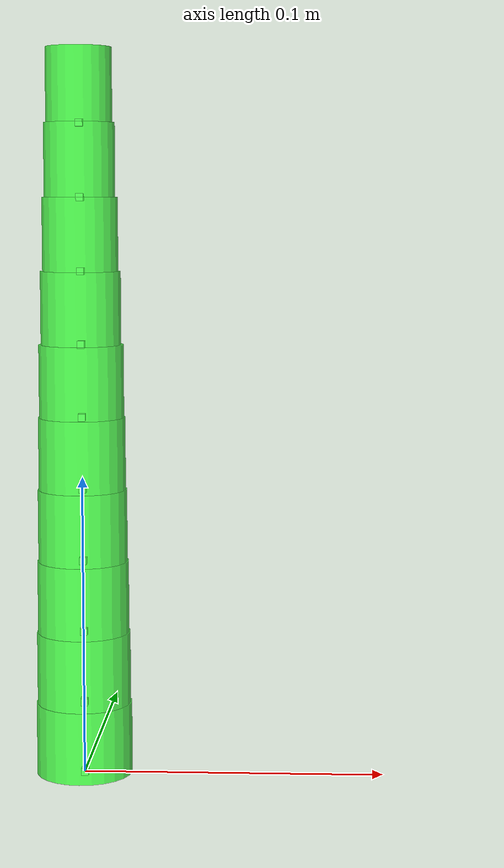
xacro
<?xml version='1.0'?>
<!-- This file has been generated automatically from create_xacro.cpp, do not edit by hand -->
<robot xmlns:xacro='http://www.ros.org/wiki/xacro' name='2segment'>
<xacro:include filename='macro_definitions.urdf.xacro' />
<xacro:empty_link name='base_link'/>
<xacro:PCC id='seg0_sec0' parent='base_link' child='seg0_sec0-1_connect' length='0.024' mass='0.2' radius='0.016'/>
<xacro:empty_link name='seg0_sec0-1_connect'/>
<xacro:PCC id='seg0_sec1' parent='seg0_sec0-1_connect' child='seg0_sec1-2_connect' length='0.024' mass='0.2' radius='0.0156'/>
<xacro:empty_link name='seg0_sec1-2_connect'/>
<xacro:PCC id='seg0_sec2' parent='seg0_sec1-2_connect' child='seg0_sec2-3_connect' length='0.024' mass='0.2' radius='0.0152'/>
<xacro:empty_link name='seg0_sec2-3_connect'/>
<xacro:PCC id='seg0_sec3' parent='seg0_sec2-3_connect' child='seg0_sec3-4_connect' length='0.024' mass='0.2' radius='0.014800000000000002'/>
<xacro:empty_link name='seg0_sec3-4_connect'/>
<xacro:PCC id='seg0_sec4' parent='seg0_sec3-4_connect' child='seg0-1_connect' length='0.024' mass='0.2' radius='0.014400000000000001'/>
<xacro:empty_link name='seg0-1_connect'/>
<xacro:PCC id='seg1_sec0' parent='seg0-1_connect' child='seg1_sec0-1_connect' length='0.024' mass='0.2' radius='0.014000000000000002'/>
<xacro:empty_link name='seg1_sec0-1_connect'/>
<xacro:PCC id='seg1_sec1' parent='seg1_sec0-1_connect' child='seg1_sec1-2_connect' length='0.024' mass='0.2' radius='0.0132'/>
<xacro:empty_link name='seg1_sec1-2_connect'/>
<xacro:PCC id='seg1_sec2' parent='seg1_sec1-2_connect' child='seg1_sec2-3_connect' length='0.024' mass='0.2' radius='0.0124'/>
<xacro:empty_link name='seg1_sec2-3_connect'/>
<xacro:PCC id='seg1_sec3' parent='seg1_sec2-3_connect' child='seg1_sec3-4_connect' length='0.024' mass='0.2' radius='0.0116'/>
<xacro:empty_link name='seg1_sec3-4_connect'/>
<xacro:PCC id='seg1_sec4' parent='seg1_sec3-4_connect' child='seg1-2_connect' length='0.024' mass='0.2' radius='0.0108'/>
<xacro:empty_link name='seg1-2_connect'/>
</robot>

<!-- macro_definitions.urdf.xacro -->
<!--
this file defines the xacro macros that can be used to create PCC augmented models
-->

<robot xmlns:xacro="http://www.ros.org/wiki/xacro" name="robot">
  <material name="white">
    <color rgba="1 1 1 1"/>
  </material>
  <material name="green">
    <color rgba="0.2 1 0.2 0.8"/>
  </material>
  <xacro:property name="PI" value="3.1415" />
  <xacro:macro name="ball-joint" params="id parent child">
    <!--creates a (pseudo) ball joint, called from the PCC macro..-->
    <joint name="${id}-ball-joint_x_joint" type="revolute">
      <parent link="${parent}"/>
      <child link="${id}-ball-joint_link_0"/>
      <axis xyz="1 0 0"/>
      <limit lower="${-PI/2}" upper="${PI/2}" effort="1000" velocity="1000"/>
    </joint>
    <link name="${id}-ball-joint_link_0">
      <xacro:default_inertial/>
    </link>
    <joint name="${id}-ball-joint_y_joint" type="revolute">
      <parent link="${id}-ball-joint_link_0"/>
      <child link="${id}-ball-joint_link_1"/>
      <axis xyz="0 1 0"/>
      <limit lower="${-PI/2}" upper="${PI/2}" effort="1000" velocity="1000"/>
    </joint>
    <link name="${id}-ball-joint_link_1">
      <xacro:default_inertial/>
      <visual>
        <geometry>
          <box size="${length/10} ${length/10} ${length/10}"/>
        </geometry>
        <material name="white"/>
      </visual>
    </link>
    <joint name="${id}-ball-joint_z_joint" type="revolute">
      <parent link="${id}-ball-joint_link_1"/>
      <child link="${child}"/>
      <axis xyz="0 0 1"/>
      <limit lower="${-PI/2}" upper="${PI/2}" effort="1000" velocity="1000"/>
    </joint>
  </xacro:macro>

  <xacro:macro name="default_inertial">
    <!--since the RBDL needs a inertial info for each link, just assign a really small value to links where we don't have to consider inertia.-->
    <inertial>
      <mass value="0.00001"/>
      <inertia ixx="0.00001" ixy="0.0000" ixz="0.0000" iyy="0.00001" iyz="0.0000" izz="0.00001"/>
    </inertial>
  </xacro:macro>

  <xacro:macro name="PCC" params="id parent child length mass radius:=0.02">
    <!--creates a PCC piece-->
    <xacro:ball-joint id="${id}-ball" parent="${parent}" child="${id}-a"/>
    <link name="${id}-a">
      <xacro:default_inertial/>
    </link>
    <joint name="${id}-a-b_joint" type="prismatic">
      <parent link="${id}-a"/>
      <child link="${id}-b"/>
      <axis xyz="0 0 -1"/>
      <origin xyz="0 0 ${length/2}"/>
      <limit lower="0" upper="${length/2}" effort="1000" velocity="1000"/>
    </joint>
    <link name="${id}-b">
      <visual>
        <geometry>
          <cylinder length="${length}" radius="${radius}"/>
        </geometry>
        <material name="green"/>
      </visual>
      <inertial>
        <mass value="${mass}"/>
        <inertia ixx="0.0001" ixy="0.000" ixz="0.000" iyy="0.0001" iyz="0.000" izz="0.0001"/>
      </inertial>
    </link>
    <joint name="${id}-b-${child}_joint" type="prismatic">
      <parent link="${id}-b"/>
      <child link="${child}"/>
      <axis xyz="0 0 -1"/>
      <origin xyz="0 0 ${length/2}"/>
      <limit lower="0" upper="${length/2}" effort="1000" velocity="1000"/>
    </joint>
  </xacro:macro>

  <xacro:macro name="empty_link" params="name">
    <link name="${name}">
      <xacro:default_inertial/>
    </link>
  </xacro:macro>
</robot>
